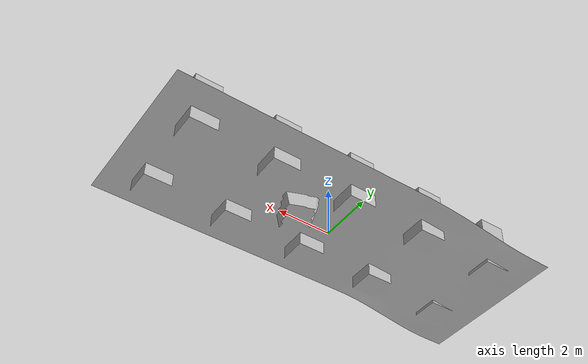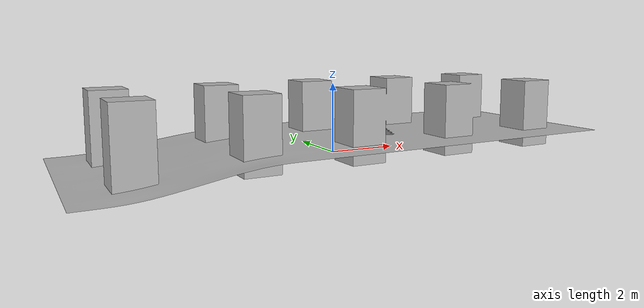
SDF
<?xml version="1.0" ?>
<sdf version="1.5">
  <model name="cube_terrain_hole">
    <pose>0 0 0 0 0 0</pose>
    <static>true</static>
    <link name="body">
      <visual name="visual">
        <geometry>
          <mesh><uri>model://turtlebot3_world/meshes/cube_terrain_hole.dae</uri></mesh>
        </geometry>
        <material>
           <script>
             <uri>model://turtlebot3_world/media/scripts</uri>
             <uri>model://turtlebot3_world/media/Textures</uri>
             <name>RepeatedGrass/Diffuse</name>
           </script>
         </material>
      </visual>

      <collision name="collision">
        <geometry>
          <mesh><uri>model://turtlebot3_world/meshes/cube_terrain_hole.dae</uri></mesh>
        </geometry>
      </collision>
    </link>
  </model>
</sdf>
